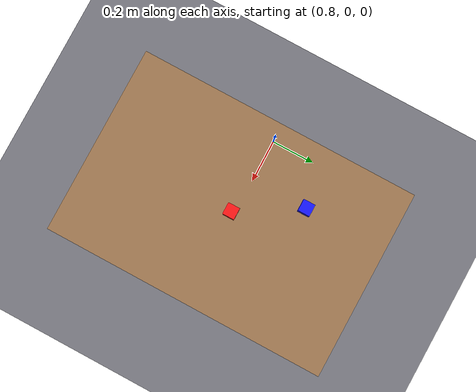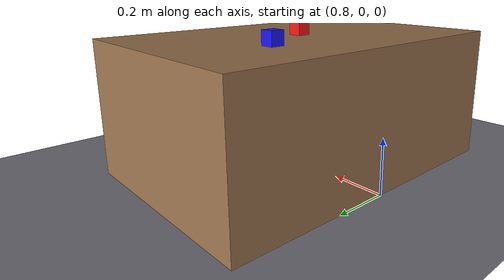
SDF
<?xml version="1.0" ?>
<sdf version="1.9">
  <world name="workcell">

    <physics name="1ms" type="ignored">
      <max_step_size>0.001</max_step_size>
      <real_time_factor>1.0</real_time_factor>
    </physics>

    <plugin filename="gz-sim-physics-system"
            name="gz::sim::systems::Physics"/>
    <plugin filename="gz-sim-user-commands-system"
            name="gz::sim::systems::UserCommands"/>
    <plugin filename="gz-sim-scene-broadcaster-system"
            name="gz::sim::systems::SceneBroadcaster"/>
    <plugin filename="gz-sim-sensors-system"
            name="gz::sim::systems::Sensors">
      <render_engine>ogre2</render_engine>
    </plugin>

    <light type="directional" name="sun">
      <cast_shadows>true</cast_shadows>
      <pose>0 0 10 0 0 0</pose>
      <diffuse>0.9 0.9 0.9 1</diffuse>
      <specular>0.3 0.3 0.3 1</specular>
      <direction>-0.4 0.3 -0.9</direction>
    </light>

    <model name="ground_plane">
      <static>true</static>
      <link name="link">
        <collision name="collision">
          <geometry><plane><normal>0 0 1</normal><size>50 50</size></plane></geometry>
        </collision>
        <visual name="visual">
          <geometry><plane><normal>0 0 1</normal><size>50 50</size></plane></geometry>
          <material>
            <ambient>0.35 0.35 0.38 1</ambient>
            <diffuse>0.45 0.45 0.48 1</diffuse>
          </material>
        </visual>
      </link>
    </model>

    <!-- Work table: top surface at z = 0.5 m, centred 0.9 m out on +X -->
    <model name="work_table">
      <static>true</static>
      <pose>1.2 0 0.25 0 0 0</pose>
      <link name="link">
        <collision name="collision">
          <geometry><box><size>0.8 1.2 0.5</size></box></geometry>
          <surface><friction><ode><mu>0.9</mu><mu2>0.9</mu2></ode></friction></surface>
        </collision>
        <visual name="visual">
          <geometry><box><size>0.8 1.2 0.5</size></box></geometry>
          <material>
            <ambient>0.4 0.3 0.2 1</ambient>
            <diffuse>0.6 0.45 0.3 1</diffuse>
          </material>
        </visual>
      </link>
    </model>

    <!-- Red target block, 5 cm cube, sitting on the table -->
    <model name="red_block">
      <pose>1.2 0.0 0.525 0 0 0</pose>
      <link name="link">
        <inertial>
          <mass>0.05</mass>
          <inertia><ixx>2.08e-5</ixx><iyy>2.08e-5</iyy><izz>2.08e-5</izz>
                   <ixy>0</ixy><ixz>0</ixz><iyz>0</iyz></inertia>
        </inertial>
        <collision name="collision">
          <geometry><box><size>0.05 0.05 0.05</size></box></geometry>
          <surface><friction><ode><mu>10.0</mu><mu2>10.0</mu2></ode></friction></surface>
        </collision>
        <visual name="visual">
          <geometry><box><size>0.05 0.05 0.05</size></box></geometry>
          <material>
            <ambient>0.7 0.05 0.05 1</ambient>
            <diffuse>0.95 0.08 0.08 1</diffuse>
            <specular>0.2 0.2 0.2 1</specular>
          </material>
        </visual>
      </link>

      <plugin filename="gz-sim-detachable-joint-system"
              name="gz::sim::systems::DetachableJoint">
        <parent_link>link</parent_link>
        <child_model>cobot</child_model>
        <child_link>finger_left</child_link>
        <attach_topic>/red_block/attach</attach_topic>
        <detach_topic>/red_block/detach</detach_topic>
        <output_topic>/red_block/state</output_topic>
        <suppress_child_warning>true</suppress_child_warning>
      </plugin>
    </model>

    <!-- Blue distractor block -->
    <model name="blue_block">
      <pose>1.05 0.25 0.525 0 0 0</pose>
      <link name="link">
        <inertial>
          <mass>0.05</mass>
          <inertia><ixx>2.08e-5</ixx><iyy>2.08e-5</iyy><izz>2.08e-5</izz>
                   <ixy>0</ixy><ixz>0</ixz><iyz>0</iyz></inertia>
        </inertial>
        <collision name="collision">
          <geometry><box><size>0.05 0.05 0.05</size></box></geometry>
        </collision>
        <visual name="visual">
          <geometry><box><size>0.05 0.05 0.05</size></box></geometry>
          <material>
            <ambient>0.05 0.05 0.7 1</ambient>
            <diffuse>0.08 0.08 0.95 1</diffuse>
          </material>
        </visual>
      </link>
    </model>

  </world>
</sdf>
